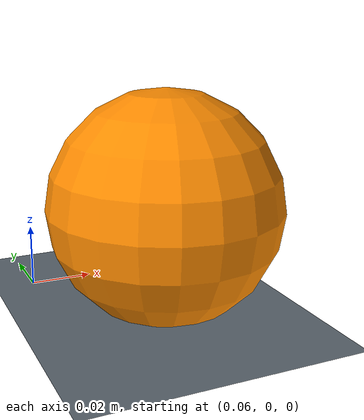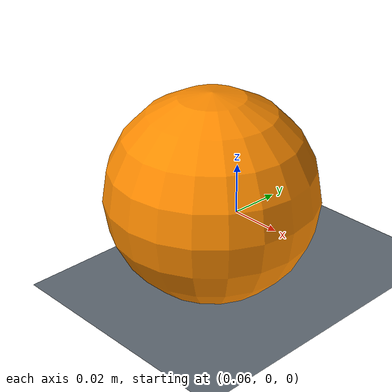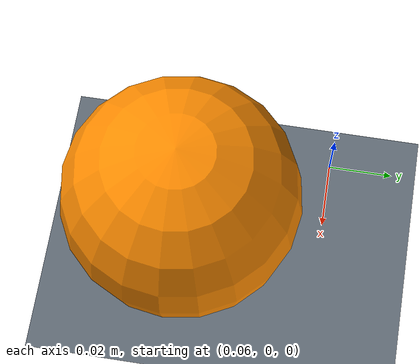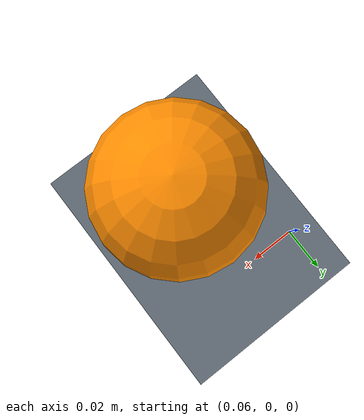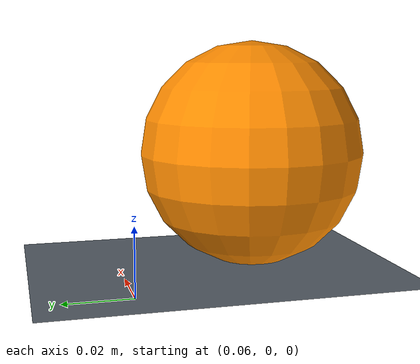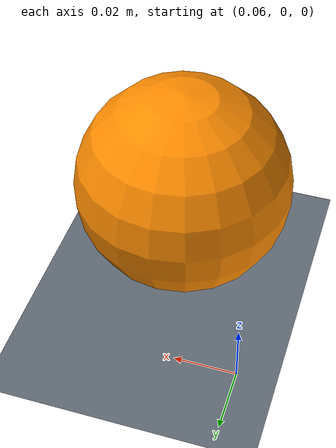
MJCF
<mujoco model="robobuddy_microduck_kick">
  <compiler angle="radian" autolimits="true"/>
  <option integrator="Euler" timestep="0.005" iterations="100" ls_iterations="50" gravity="0 0 -9.81"/>
  <default>
    <default class="duck_servo">
      <joint damping="0.053" frictionloss="0.0048" armature="0.0018"/>
      <position kp="0.55" kv="0" forcerange="-0.96 0.96" ctrlrange="-10 10"/>
    </default>
    <default class="duck_contact">
      <geom group="3" contype="1" conaffinity="1" condim="3" friction="1 0.005 0.0001" solref="0.02 1" rgba="0.85 0.72 0.25 1"/>
    </default>
    <default class="self_contact">
      <geom group="3" contype="2" conaffinity="2" condim="3" friction="1 0.005 0.0001" solref="0.02 1" rgba="0.55 0.57 0.60 1"/>
    </default>
    <default class="duck_floor">
      <geom type="plane" contype="1" conaffinity="1" condim="3" friction="1 0.005 0.0001" solref="0.02 1" rgba="0.38 0.42 0.46 1"/>
    </default>
  </default>
  <worldbody>
    <light pos="0 0 2" dir="0 0 -1"/>
    <geom name="microduck_floor" class="duck_floor" size="4 4 0.05"/>

        <body name="trunk_base" pos="0 0 0.12" quat="1 0 0 0">
            <geom name="trunk_shell_right" class="duck_contact" type="box" size="0.041215 0.01675 0.01735" pos="-0.006405 -0.01425 0.024715" mass="0"/>
            <geom name="trunk_shell_left" class="duck_contact" type="box" size="0.041215 0.01545 0.01785" pos="-0.006405 0.01555 0.025215" mass="0"/>
            <geom name="battery_pack" class="duck_contact" type="box" size="0.010875 0.019305 0.035525" pos="-0.035955 -5e-06 -0.003855" mass="0"/>
            <geom name="power_support" class="self_contact" type="box" size="0.0085 0.02725 0.041745" pos="-0.0225 0 -0.002325" mass="0"/>
          <freejoint name="trunk_base_freejoint" />
          <inertial pos="-0.0184191 6.58793e-06 0.00237545" mass="0.264385" fullinertia="0.00014465 0.000173927 0.000155277 1.1006e-08 -1.48335e-05 -7.0102e-08" />

          <site group="3" name="imu_bno" pos="-0.032 0.0140011 0.0430618" quat="1 0 -0 -0" />

          <site group="3" name="imu" pos="-0.021 6.53121e-05 -0.0148911" quat="1 -0 0 0" />

          <body name="yaw2roll" pos="0.006 0.0175 -0.005" quat="0 -0.707107 -0.707107 -0">

            <joint axis="0 0 1" name="left_hip_yaw" class="duck_servo" type="hinge" range="-0.4363323129985824 0.5235987755982988" />
            <inertial pos="-8.6e-11 0.00121491 0.0169312" mass="0.0235131" fullinertia="4.332e-06 3.52213e-06 2.40737e-06 -0 -0 -6.1011e-08" />

            <body name="hip_l" pos="-0 0.0165 0.0125" quat="0.707107 -0.707107 -0 0">
            <geom name="left_hip" class="duck_contact" type="box" size="0.016225 0.0095 0.01725" pos="0.006725 0 -0.01075" mass="0"/>

              <joint axis="0 0 1" name="left_hip_roll" class="duck_servo" type="hinge" range="-0.3839724354387516 0.38397243543875337" />
              <inertial pos="0.0152731 1.5269e-08 -0.00887078" mass="0.00521" fullinertia="7.39697e-07 9.80856e-07 5.50165e-07 1e-12 3.32804e-07 -1e-12" />

              <body name="left_upper_leg" pos="0.025 0 -0.0185" quat="0.5 -0.5 0.5 -0.5">
            <geom name="left_thigh" class="duck_contact" type="box" size="0.02383 0.0305 0.014" pos="0.01036 0.0183 0.014" mass="0"/>

                <joint axis="0 0 1" name="left_hip_pitch" class="duck_servo" type="hinge" range="-1.5707963267949037 1.5707963267948895" />
                <inertial pos="0.00731784 0.0224795 0.0124951" mass="0.04315" fullinertia="1.47473e-05 8.74297e-06 1.74437e-05 -4.30685e-06 2.48476e-07 3.43647e-07" />

                <body name="leg" pos="0.022 0.0357771 -0.004" quat="0 0.707107 0.707107 -0">
            <geom name="left_shank" class="duck_contact" type="box" size="0.01 0.029 0.003975" pos="0 0.019 0.002025" mass="0"/>

                  <joint axis="0 0 1" name="left_knee" class="duck_servo" type="hinge" range="-1.570796326794901 1.5707963267948921" />
                  <inertial pos="-1.52e-10 0.0318937 -0.00953505" mass="0.0215844" fullinertia="5.25054e-06 2.15507e-06 4.33924e-06 -1e-12 0 7.64996e-07" />

                  <body name="ankle_left" pos="-0 0.042 -0.026" quat="0 1 0 -0">
            <geom name="left_foot_collision" class="duck_contact" type="box" size="0.022784 0.003 0.016975" pos="-0.006993 -0.020873 -0.014521" quat="0.999141007 -0.0414397002 0 0" mass="0"/>

                    <joint axis="0 0 1" name="left_ankle" class="duck_servo" type="hinge" range="-1.5707963267949019 1.5707963267948912" />
                    <inertial pos="-0.0064761 -0.0135798 -0.0156785" mass="0.0264653" fullinertia="5.54455e-06 1.04088e-05 7.28364e-06 -1.94121e-07 8.6681e-08 5.8663e-08" />

                    <site group="3" name="left_foot" pos="-0 -0.0237879 -0.0140852" quat="0 -0 0.707107 0.707107" />
                  </body>
                </body>
              </body>
            </body>
          </body>

          <body name="neck" pos="0.026 0.0145011 0.0324424" quat="0 -0 -0.707107 0.707107">

            <joint axis="0 0 1" name="neck_pitch" class="duck_servo" type="hinge" range="-1.5707963267948966 1.0471975511965976" />
            <inertial pos="0 -0.025 0.0141665" mass="0.0368414" fullinertia="1.72925e-05 3.12694e-06 1.63707e-05 0 0 0" />

            <body name="neck_pitch" pos="0 -0.05 0" quat="0 1 0 0">

              <joint axis="0 0 1" name="head_pitch" class="duck_servo" type="hinge" range="-1.5707963267948966 1.5707963267948966" />
              <inertial pos="-6.533e-09 0.0116641 -0.0145" mass="0.00572" fullinertia="1.09186e-06 9.66855e-07 5.12111e-07 0 0 0" />

              <body name="yaw_roll_motion" pos="-0 0.0186931 -0.0145" quat="0 -0 -0.707107 -0.707107">

                <joint axis="0 0 1" name="head_yaw" class="duck_servo" type="hinge" range="-2.967059728390364 2.967059728390357" />
                <inertial pos="-0.00140611 -0.00599577 0.0155412" mass="0.02492" fullinertia="3.73979e-06 3.14478e-06 4.07916e-06 1.87232e-07 4.603e-09 3.1883e-08" />

                <body name="bottom_head_shell" pos="-0.0179 0 0.0145" quat="0.707107 -0 -0.707107 0">
            <geom name="head_shell_lower" class="duck_contact" type="box" size="0.01007 0.04588 0.058375" pos="-0.00707 0 -0.019875" mass="0"/>
            <geom name="head_shell_upper" class="duck_contact" type="box" size="0.023165 0.04588 0.061345" pos="0.018665 0 -0.022845" mass="0"/>
            <geom name="jaw" class="duck_contact" type="box" size="0.014725 0.04571 0.034355" pos="-0.001765 0 -0.043355" mass="0"/>

                  <joint axis="0 0 1" name="head_roll" class="duck_servo" type="hinge" range="-0.4363323129986037 0.43633231299856107" />
                  <inertial pos="0.00368889 0.00145319 -0.0329861" mass="0.172649" fullinertia="0.000292186 0.000223546 0.000142648 -1.11987e-06 3.85879e-06 3.78829e-06" />

                  <site group="3" name="head_camera" pos="0.01175 0 -0.0735" quat="0.707107 0 0.707107 -0" />
                  <site group="3" name="mouth_tip" pos="-0.00829334 0 -0.0777383" quat="0.658004 -0.0201775 0.75239 0.0230718" />

                  <site group="3" name="tof" pos="0.0143 0.0225 -0.0735" quat="0.707107 0 0.707107 -0" />

                  <site group="3" name="head_imu" pos="0.0114823 0.000202447 -0.05126" quat="1 0 0 -0" />
                </body>
              </body>
            </body>
          </body>

          <body name="bearing_roll" pos="0.006 -0.0175 -0.005" quat="0 -0.707107 -0.707107 -0">

            <joint axis="0 0 1" name="right_hip_yaw" class="duck_servo" type="hinge" range="-0.5235987755982988 0.4363323129985824" />
            <inertial pos="-8.6e-11 0.00121491 0.0169312" mass="0.0235131" fullinertia="4.332e-06 3.52213e-06 2.40737e-06 -0 -0 -6.1011e-08" />

            <body name="hip_l_2" pos="-0 0.0165 0.0125" quat="0 -0 0.707107 0.707107">
            <geom name="right_hip" class="duck_contact" type="box" size="0.016225 0.0095 0.01725" pos="0.006725 0 -0.01075" mass="0"/>

              <joint axis="0 0 1" name="right_hip_roll" class="duck_servo" type="hinge" range="-0.3839724354387525 0.3839724354387525" />
              <inertial pos="0.0152731 1.5309e-08 -0.00887078" mass="0.00521" fullinertia="7.39697e-07 9.80856e-07 5.50165e-07 1e-12 3.32804e-07 -1e-12" />

              <body name="right_upper_leg" pos="0.025 0 -0.0185" quat="0.5 -0.5 0.5 -0.5">
            <geom name="right_thigh" class="duck_contact" type="box" size="0.02383 0.0305 0.014" pos="-0.01036 0.0183 0.014" mass="0"/>

                <joint axis="0 0 1" name="right_hip_pitch" class="duck_servo" type="hinge" range="-1.5707963267949 1.570796326794893" />
                <inertial pos="-0.00731784 0.0224795 0.0124951" mass="0.04315" fullinertia="1.47473e-05 8.74297e-06 1.74437e-05 4.30685e-06 -2.48476e-07 3.43648e-07" />

                <body name="leg_2" pos="-0.022 0.0357771 -0.004" quat="0 1 -0 -0">
            <geom name="right_shank" class="duck_contact" type="box" size="0.029 0.01 0.003975" pos="-0.019 0 0.002025" mass="0"/>

                  <joint axis="0 0 1" name="right_knee" class="duck_servo" type="hinge" range="-1.570796326794901 1.5707963267948921" />
                  <inertial pos="-0.0318937 -1.52e-10 -0.00953505" mass="0.0215844" fullinertia="2.15507e-06 5.25054e-06 4.33924e-06 1e-12 -7.64996e-07 0" />

                  <body name="ankle_right" pos="-0.042 -0 -0.026" quat="0 -0.707107 0.707107 0">
            <geom name="right_foot_collision" class="duck_contact" type="box" size="0.022784 0.003 0.016975" pos="-0.006993 0.020873 -0.014515" quat="0.999141007 0.0414397002 0 0" mass="0"/>

                    <joint axis="0 0 1" name="right_ankle" class="duck_servo" type="hinge" range="-1.5707963267949028 1.5707963267948903" />
                    <inertial pos="-0.00647683 0.0135791 -0.0156784" mass="0.0264654" fullinertia="5.54401e-06 1.04095e-05 7.28472e-06 1.94071e-07 8.5523e-08 -5.871e-08" />

                    <site group="3" name="right_foot" pos="-0 0.0237879 -0.0140852" quat="0 -0 0.707107 -0.707107" />
                  </body>
                </body>
              </body>
            </body>
          </body>
        </body>

    <body name="microduck_ball" pos="0.09 -0.042 0.035">
      <freejoint name="microduck_ball_free"/>
      <inertial pos="0 0 0" mass="0.015" diaginertia="1.225e-05 1.225e-05 1.225e-05"/>
      <geom name="microduck_ball_geom" type="sphere" size="0.035" condim="3" friction="0.5 0.005 0.0001" solref="0.02 1" rgba="1 0.55 0 1"/>
    </body>
  </worldbody>
  <sensor>
    <gyro name="imu_ang_vel" site="imu"/>
    <accelerometer name="imu_accel" site="imu"/>
    <framequat name="imu_orientation" objtype="site" objname="imu"/>
  </sensor>
  <actuator>
    <position name="act_left_hip_yaw" class="duck_servo" joint="left_hip_yaw"/>
    <position name="act_left_hip_roll" class="duck_servo" joint="left_hip_roll"/>
    <position name="act_left_hip_pitch" class="duck_servo" joint="left_hip_pitch"/>
    <position name="act_left_knee" class="duck_servo" joint="left_knee"/>
    <position name="act_left_ankle" class="duck_servo" joint="left_ankle"/>
    <position name="act_neck_pitch" class="duck_servo" joint="neck_pitch"/>
    <position name="act_head_pitch" class="duck_servo" joint="head_pitch"/>
    <position name="act_head_yaw" class="duck_servo" joint="head_yaw"/>
    <position name="act_head_roll" class="duck_servo" joint="head_roll"/>
    <position name="act_right_hip_yaw" class="duck_servo" joint="right_hip_yaw"/>
    <position name="act_right_hip_roll" class="duck_servo" joint="right_hip_roll"/>
    <position name="act_right_hip_pitch" class="duck_servo" joint="right_hip_pitch"/>
    <position name="act_right_knee" class="duck_servo" joint="right_knee"/>
    <position name="act_right_ankle" class="duck_servo" joint="right_ankle"/>
  </actuator>
  <keyframe>
    <key name="HOME" qpos="0 0 0.12 1 0 0 0 0 -0.0873 -0.4579 -0.0049 0.453 0.3491 0.3491 0 0 0 0.0873 0.4579 0.0049 -0.453 0.09 -0.042 0.035 1 0 0 0" ctrl="0 -0.0873 -0.4579 -0.0049 0.453 0.3491 0.3491 0 0 0 0.0873 0.4579 0.0049 -0.453"/>
  </keyframe>
</mujoco>
